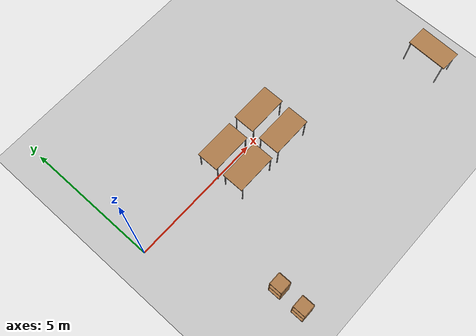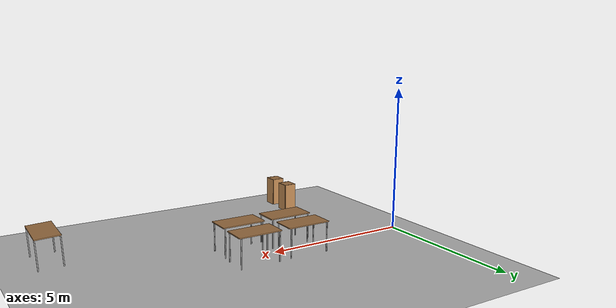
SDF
<sdf version="1.6">
 <world name="default">
  <model name="ground_plane">
   <static>1</static>
   <link name="link">
    <collision name="collision">
     <geometry><plane><normal>0 0 1</normal><size>100 100</size></plane></geometry>
     <surface><friction><ode><mu>100</mu><mu2>50</mu2></ode></friction></surface>
    </collision>
    <visual name="visual">
     <cast_shadows>0</cast_shadows>
     <geometry><plane><normal>0 0 1</normal><size>100 100</size></plane></geometry>
     <material>
      <script><uri>file://media/materials/scripts/gazebo.material</uri><name>Gazebo/Grey</name></script>
     </material>
    </visual>
   </link>
  </model>
  <model name="table_6">
   <static>1</static>
   <link name="link">
    <collision name="surface">
     <pose>0 0 1 0 -0 0</pose>
     <geometry><box><size>1.5 0.8 0.03</size></box></geometry>
     <surface><friction><ode><mu>0.6</mu><mu2>0.6</mu2></ode></friction></surface>
    </collision>
    <visual name="visual1">
     <pose>0 0 1 0 -0 0</pose>
     <geometry><box><size>1.5 0.8 0.03</size></box></geometry>
     <material>
      <script><uri>file://media/materials/scripts/gazebo.material</uri><name>Gazebo/Wood</name></script>
     </material>
    </visual>
    <collision name="front_left_leg">
     <pose>0.68 0.38 0.5 0 -0 0</pose>
     <geometry><cylinder><radius>0.02</radius><length>1</length></cylinder></geometry>
    </collision>
    <visual name="front_left_leg">
     <pose>0.68 0.38 0.5 0 -0 0</pose>
     <geometry><cylinder><radius>0.02</radius><length>1</length></cylinder></geometry>
     <material>
      <script><uri>file://media/materials/scripts/gazebo.material</uri><name>Gazebo/Grey</name></script>
     </material>
    </visual>
    <collision name="front_right_leg">
     <pose>0.68 -0.38 0.5 0 -0 0</pose>
     <geometry><cylinder><radius>0.02</radius><length>1</length></cylinder></geometry>
    </collision>
    <visual name="front_right_leg">
     <pose>0.68 -0.38 0.5 0 -0 0</pose>
     <geometry><cylinder><radius>0.02</radius><length>1</length></cylinder></geometry>
     <material>
      <script><uri>file://media/materials/scripts/gazebo.material</uri><name>Gazebo/Grey</name></script>
     </material>
    </visual>
    <collision name="back_right_leg">
     <pose>-0.68 -0.38 0.5 0 -0 0</pose>
     <geometry><cylinder><radius>0.02</radius><length>1</length></cylinder></geometry>
    </collision>
    <visual name="back_right_leg">
     <pose>-0.68 -0.38 0.5 0 -0 0</pose>
     <geometry><cylinder><radius>0.02</radius><length>1</length></cylinder></geometry>
     <material>
      <script><uri>file://media/materials/scripts/gazebo.material</uri><name>Gazebo/Grey</name></script>
     </material>
    </visual>
    <collision name="back_left_leg">
     <pose>-0.68 0.38 0.5 0 -0 0</pose>
     <geometry><cylinder><radius>0.02</radius><length>1</length></cylinder></geometry>
    </collision>
    <visual name="back_left_leg">
     <pose>-0.68 0.38 0.5 0 -0 0</pose>
     <geometry><cylinder><radius>0.02</radius><length>1</length></cylinder></geometry>
     <material>
      <script><uri>file://media/materials/scripts/gazebo.material</uri><name>Gazebo/Grey</name></script>
     </material>
    </visual>
   </link>
   <pose>4.16096 0.344612 0 0 -0 0</pose>
  </model>
  <model name="table_7">
   <static>1</static>
   <link name="link">
    <collision name="surface">
     <pose>0 0 1 0 -0 0</pose>
     <geometry><box><size>1.5 0.8 0.03</size></box></geometry>
     <surface><friction><ode><mu>0.6</mu><mu2>0.6</mu2></ode></friction></surface>
    </collision>
    <visual name="visual1">
     <pose>0 0 1 0 -0 0</pose>
     <geometry><box><size>1.5 0.8 0.03</size></box></geometry>
     <material>
      <script><uri>file://media/materials/scripts/gazebo.material</uri><name>Gazebo/Wood</name></script>
     </material>
    </visual>
    <collision name="front_left_leg">
     <pose>0.68 0.38 0.5 0 -0 0</pose>
     <geometry><cylinder><radius>0.02</radius><length>1</length></cylinder></geometry>
    </collision>
    <visual name="front_left_leg">
     <pose>0.68 0.38 0.5 0 -0 0</pose>
     <geometry><cylinder><radius>0.02</radius><length>1</length></cylinder></geometry>
     <material>
      <script><uri>file://media/materials/scripts/gazebo.material</uri><name>Gazebo/Grey</name></script>
     </material>
    </visual>
    <collision name="front_right_leg">
     <pose>0.68 -0.38 0.5 0 -0 0</pose>
     <geometry><cylinder><radius>0.02</radius><length>1</length></cylinder></geometry>
    </collision>
    <visual name="front_right_leg">
     <pose>0.68 -0.38 0.5 0 -0 0</pose>
     <geometry><cylinder><radius>0.02</radius><length>1</length></cylinder></geometry>
     <material>
      <script><uri>file://media/materials/scripts/gazebo.material</uri><name>Gazebo/Grey</name></script>
     </material>
    </visual>
    <collision name="back_right_leg">
     <pose>-0.68 -0.38 0.5 0 -0 0</pose>
     <geometry><cylinder><radius>0.02</radius><length>1</length></cylinder></geometry>
    </collision>
    <visual name="back_right_leg">
     <pose>-0.68 -0.38 0.5 0 -0 0</pose>
     <geometry><cylinder><radius>0.02</radius><length>1</length></cylinder></geometry>
     <material>
      <script><uri>file://media/materials/scripts/gazebo.material</uri><name>Gazebo/Grey</name></script>
     </material>
    </visual>
    <collision name="back_left_leg">
     <pose>-0.68 0.38 0.5 0 -0 0</pose>
     <geometry><cylinder><radius>0.02</radius><length>1</length></cylinder></geometry>
    </collision>
    <visual name="back_left_leg">
     <pose>-0.68 0.38 0.5 0 -0 0</pose>
     <geometry><cylinder><radius>0.02</radius><length>1</length></cylinder></geometry>
     <material>
      <script><uri>file://media/materials/scripts/gazebo.material</uri><name>Gazebo/Grey</name></script>
     </material>
    </visual>
   </link>
   <pose>5.95054 0.365611 0 0 -0 0</pose>
  </model>
  <model name="table_8">
   <static>1</static>
   <link name="link">
    <collision name="surface">
     <pose>0 0 1 0 -0 0</pose>
     <geometry><box><size>1.5 0.8 0.03</size></box></geometry>
     <surface><friction><ode><mu>0.6</mu><mu2>0.6</mu2></ode></friction></surface>
    </collision>
    <visual name="visual1">
     <pose>0 0 1 0 -0 0</pose>
     <geometry><box><size>1.5 0.8 0.03</size></box></geometry>
     <material>
      <script><uri>file://media/materials/scripts/gazebo.material</uri><name>Gazebo/Wood</name></script>
     </material>
    </visual>
    <collision name="front_left_leg">
     <pose>0.68 0.38 0.5 0 -0 0</pose>
     <geometry><cylinder><radius>0.02</radius><length>1</length></cylinder></geometry>
    </collision>
    <visual name="front_left_leg">
     <pose>0.68 0.38 0.5 0 -0 0</pose>
     <geometry><cylinder><radius>0.02</radius><length>1</length></cylinder></geometry>
     <material>
      <script><uri>file://media/materials/scripts/gazebo.material</uri><name>Gazebo/Grey</name></script>
     </material>
    </visual>
    <collision name="front_right_leg">
     <pose>0.68 -0.38 0.5 0 -0 0</pose>
     <geometry><cylinder><radius>0.02</radius><length>1</length></cylinder></geometry>
    </collision>
    <visual name="front_right_leg">
     <pose>0.68 -0.38 0.5 0 -0 0</pose>
     <geometry><cylinder><radius>0.02</radius><length>1</length></cylinder></geometry>
     <material>
      <script><uri>file://media/materials/scripts/gazebo.material</uri><name>Gazebo/Grey</name></script>
     </material>
    </visual>
    <collision name="back_right_leg">
     <pose>-0.68 -0.38 0.5 0 -0 0</pose>
     <geometry><cylinder><radius>0.02</radius><length>1</length></cylinder></geometry>
    </collision>
    <visual name="back_right_leg">
     <pose>-0.68 -0.38 0.5 0 -0 0</pose>
     <geometry><cylinder><radius>0.02</radius><length>1</length></cylinder></geometry>
     <material>
      <script><uri>file://media/materials/scripts/gazebo.material</uri><name>Gazebo/Grey</name></script>
     </material>
    </visual>
    <collision name="back_left_leg">
     <pose>-0.68 0.38 0.5 0 -0 0</pose>
     <geometry><cylinder><radius>0.02</radius><length>1</length></cylinder></geometry>
    </collision>
    <visual name="back_left_leg">
     <pose>-0.68 0.38 0.5 0 -0 0</pose>
     <geometry><cylinder><radius>0.02</radius><length>1</length></cylinder></geometry>
     <material>
      <script><uri>file://media/materials/scripts/gazebo.material</uri><name>Gazebo/Grey</name></script>
     </material>
    </visual>
   </link>
   <pose>4.17492 -0.740723 0 0 -0 0</pose>
  </model>
  <model name="table_9">
   <static>1</static>
   <link name="link">
    <collision name="surface">
     <pose>0 0 1 0 -0 0</pose>
     <geometry><box><size>1.5 0.8 0.03</size></box></geometry>
     <surface><friction><ode><mu>0.6</mu><mu2>0.6</mu2></ode></friction></surface>
    </collision>
    <visual name="visual1">
     <pose>0 0 1 0 -0 0</pose>
     <geometry><box><size>1.5 0.8 0.03</size></box></geometry>
     <material>
      <script><uri>file://media/materials/scripts/gazebo.material</uri><name>Gazebo/Wood</name></script>
     </material>
    </visual>
    <collision name="front_left_leg">
     <pose>0.68 0.38 0.5 0 -0 0</pose>
     <geometry><cylinder><radius>0.02</radius><length>1</length></cylinder></geometry>
    </collision>
    <visual name="front_left_leg">
     <pose>0.68 0.38 0.5 0 -0 0</pose>
     <geometry><cylinder><radius>0.02</radius><length>1</length></cylinder></geometry>
     <material>
      <script><uri>file://media/materials/scripts/gazebo.material</uri><name>Gazebo/Grey</name></script>
     </material>
    </visual>
    <collision name="front_right_leg">
     <pose>0.68 -0.38 0.5 0 -0 0</pose>
     <geometry><cylinder><radius>0.02</radius><length>1</length></cylinder></geometry>
    </collision>
    <visual name="front_right_leg">
     <pose>0.68 -0.38 0.5 0 -0 0</pose>
     <geometry><cylinder><radius>0.02</radius><length>1</length></cylinder></geometry>
     <material>
      <script><uri>file://media/materials/scripts/gazebo.material</uri><name>Gazebo/Grey</name></script>
     </material>
    </visual>
    <collision name="back_right_leg">
     <pose>-0.68 -0.38 0.5 0 -0 0</pose>
     <geometry><cylinder><radius>0.02</radius><length>1</length></cylinder></geometry>
    </collision>
    <visual name="back_right_leg">
     <pose>-0.68 -0.38 0.5 0 -0 0</pose>
     <geometry><cylinder><radius>0.02</radius><length>1</length></cylinder></geometry>
     <material>
      <script><uri>file://media/materials/scripts/gazebo.material</uri><name>Gazebo/Grey</name></script>
     </material>
    </visual>
    <collision name="back_left_leg">
     <pose>-0.68 0.38 0.5 0 -0 0</pose>
     <geometry><cylinder><radius>0.02</radius><length>1</length></cylinder></geometry>
    </collision>
    <visual name="back_left_leg">
     <pose>-0.68 0.38 0.5 0 -0 0</pose>
     <geometry><cylinder><radius>0.02</radius><length>1</length></cylinder></geometry>
     <material>
      <script><uri>file://media/materials/scripts/gazebo.material</uri><name>Gazebo/Grey</name></script>
     </material>
    </visual>
   </link>
   <pose>5.92417 -0.741013 0 0 -0 0</pose>
  </model>
  <model name="table_10">
   <static>1</static>
   <link name="link">
    <collision name="surface">
     <pose>0 0 1 0 -0 0</pose>
     <geometry><box><size>1.5 0.8 0.03</size></box></geometry>
     <surface><friction><ode><mu>0.6</mu><mu2>0.6</mu2></ode></friction></surface>
    </collision>
    <visual name="visual1">
     <pose>0 0 1 0 -0 0</pose>
     <geometry><box><size>1.5 0.8 0.03</size></box></geometry>
     <material>
      <script><uri>file://media/materials/scripts/gazebo.material</uri><name>Gazebo/Wood</name></script>
     </material>
    </visual>
    <collision name="front_left_leg">
     <pose>0.68 0.38 0.5 0 -0 0</pose>
     <geometry><cylinder><radius>0.02</radius><length>1</length></cylinder></geometry>
    </collision>
    <visual name="front_left_leg">
     <pose>0.68 0.38 0.5 0 -0 0</pose>
     <geometry><cylinder><radius>0.02</radius><length>1</length></cylinder></geometry>
     <material>
      <script><uri>file://media/materials/scripts/gazebo.material</uri><name>Gazebo/Grey</name></script>
     </material>
    </visual>
    <collision name="front_right_leg">
     <pose>0.68 -0.38 0.5 0 -0 0</pose>
     <geometry><cylinder><radius>0.02</radius><length>1</length></cylinder></geometry>
    </collision>
    <visual name="front_right_leg">
     <pose>0.68 -0.38 0.5 0 -0 0</pose>
     <geometry><cylinder><radius>0.02</radius><length>1</length></cylinder></geometry>
     <material>
      <script><uri>file://media/materials/scripts/gazebo.material</uri><name>Gazebo/Grey</name></script>
     </material>
    </visual>
    <collision name="back_right_leg">
     <pose>-0.68 -0.38 0.5 0 -0 0</pose>
     <geometry><cylinder><radius>0.02</radius><length>1</length></cylinder></geometry>
    </collision>
    <visual name="back_right_leg">
     <pose>-0.68 -0.38 0.5 0 -0 0</pose>
     <geometry><cylinder><radius>0.02</radius><length>1</length></cylinder></geometry>
     <material>
      <script><uri>file://media/materials/scripts/gazebo.material</uri><name>Gazebo/Grey</name></script>
     </material>
    </visual>
    <collision name="back_left_leg">
     <pose>-0.68 0.38 0.5 0 -0 0</pose>
     <geometry><cylinder><radius>0.02</radius><length>1</length></cylinder></geometry>
    </collision>
    <visual name="back_left_leg">
     <pose>-0.68 0.38 0.5 0 -0 0</pose>
     <geometry><cylinder><radius>0.02</radius><length>1</length></cylinder></geometry>
     <material>
      <script><uri>file://media/materials/scripts/gazebo.material</uri><name>Gazebo/Grey</name></script>
     </material>
    </visual>
   </link>
   <pose>11.5846 -2.60935 0.137281 -0.052354 -0.00168 -1.60285</pose>
  </model>
  <model name="cabinet">
   <static>1</static>
   <link name="cabinet_bottom_plate">
    <inertial>
     <pose>0 0 -1 0 -0 0</pose>
     <inertia><ixx>2.05</ixx><ixy>0</ixy><ixz>0</ixz><iyy>2.05</iyy><iyz>0</iyz><izz>2.05</izz></inertia>
     <mass>25</mass>
    </inertial>
    <collision name="cabinet_bottom_plate_geom">
     <pose>0 0 0.01 0 -0 0</pose>
     <geometry><box><size>0.45 0.45 0.02</size></box></geometry>
    </collision>
    <visual name="cabinet_bottom_plate_geom_visual">
     <pose>0 0 0.01 0 -0 0</pose>
     <geometry><box><size>0.45 0.45 0.02</size></box></geometry>
     <material>
      <script><uri>file://media/materials/scripts/gazebo.material</uri><name>Gazebo/Wood</name></script>
     </material>
    </visual>
    <collision name="cabinet_bottom_plate_geom_cabinet_back_plate">
     <pose>0.235 0 0.51 0 -0 0</pose>
     <geometry><box><size>0.02 0.45 1.02</size></box></geometry>
    </collision>
    <visual name="cabinet_bottom_plate_geom_cabinet_back_plate_visual">
     <pose>0.235 0 0.51 0 -0 0</pose>
     <geometry><box><size>0.02 0.45 1.02</size></box></geometry>
     <material>
      <script><uri>file://media/materials/scripts/gazebo.material</uri><name>Gazebo/Wood</name></script>
     </material>
    </visual>
    <collision name="cabinet_bottom_plate_geom_cabinet_left_plate">
     <pose>0 0.235 0.51 0 -0 0</pose>
     <geometry><box><size>0.45 0.02 1.02</size></box></geometry>
    </collision>
    <visual name="cabinet_bottom_plate_geom_cabinet_left_plate_visual">
     <pose>0 0.235 0.51 0 -0 0</pose>
     <geometry><box><size>0.45 0.02 1.02</size></box></geometry>
     <material>
      <script><uri>file://media/materials/scripts/gazebo.material</uri><name>Gazebo/Wood</name></script>
     </material>
    </visual>
    <collision name="cabinet_bottom_plate_geom_cabinet_middle_plate">
     <pose>0 0 0.51 0 -0 0</pose>
     <geometry><box><size>0.45 0.45 0.02</size></box></geometry>
    </collision>
    <visual name="cabinet_bottom_plate_geom_cabinet_middle_plate_visual">
     <pose>0 0 0.51 0 -0 0</pose>
     <geometry><box><size>0.45 0.45 0.02</size></box></geometry>
     <material>
      <script><uri>file://media/materials/scripts/gazebo.material</uri><name>Gazebo/Wood</name></script>
     </material>
    </visual>
    <collision name="cabinet_bottom_plate_geom_cabinet_right_plate">
     <pose>0 -0.235 0.51 0 -0 0</pose>
     <geometry><box><size>0.45 0.02 1.02</size></box></geometry>
    </collision>
    <visual name="cabinet_bottom_plate_geom_cabinet_right_plate_visual">
     <pose>0 -0.235 0.51 0 -0 0</pose>
     <geometry><box><size>0.45 0.02 1.02</size></box></geometry>
     <material>
      <script><uri>file://media/materials/scripts/gazebo.material</uri><name>Gazebo/Wood</name></script>
     </material>
    </visual>
    <collision name="cabinet_bottom_plate_geom_cabinet_top_plate">
     <pose>0 0 1.01 0 -0 0</pose>
     <geometry><box><size>0.45 0.45 0.02</size></box></geometry>
    </collision>
    <visual name="cabinet_bottom_plate_geom_cabinet_top_plate_visual">
     <pose>0 0 1.01 0 -0 0</pose>
     <geometry><box><size>0.45 0.45 0.02</size></box></geometry>
     <material>
      <script><uri>file://media/materials/scripts/gazebo.material</uri><name>Gazebo/Wood</name></script>
     </material>
    </visual>
   </link>
   <pose>1.95925 -4.96883 0.015693 0 -0 0</pose>
  </model>
  <model name="cabinet_0">
   <static>1</static>
   <link name="cabinet_bottom_plate">
    <inertial>
     <pose>0 0 -1 0 -0 0</pose>
     <inertia><ixx>2.05</ixx><ixy>0</ixy><ixz>0</ixz><iyy>2.05</iyy><iyz>0</iyz><izz>2.05</izz></inertia>
     <mass>25</mass>
    </inertial>
    <collision name="cabinet_bottom_plate_geom">
     <pose>0 0 0.01 0 -0 0</pose>
     <geometry><box><size>0.45 0.45 0.02</size></box></geometry>
    </collision>
    <visual name="cabinet_bottom_plate_geom_visual">
     <pose>0 0 0.01 0 -0 0</pose>
     <geometry><box><size>0.45 0.45 0.02</size></box></geometry>
     <material>
      <script><uri>file://media/materials/scripts/gazebo.material</uri><name>Gazebo/Wood</name></script>
     </material>
    </visual>
    <collision name="cabinet_bottom_plate_geom_cabinet_back_plate">
     <pose>0.235 0 0.51 0 -0 0</pose>
     <geometry><box><size>0.02 0.45 1.02</size></box></geometry>
    </collision>
    <visual name="cabinet_bottom_plate_geom_cabinet_back_plate_visual">
     <pose>0.235 0 0.51 0 -0 0</pose>
     <geometry><box><size>0.02 0.45 1.02</size></box></geometry>
     <material>
      <script><uri>file://media/materials/scripts/gazebo.material</uri><name>Gazebo/Wood</name></script>
     </material>
    </visual>
    <collision name="cabinet_bottom_plate_geom_cabinet_left_plate">
     <pose>0 0.235 0.51 0 -0 0</pose>
     <geometry><box><size>0.45 0.02 1.02</size></box></geometry>
    </collision>
    <visual name="cabinet_bottom_plate_geom_cabinet_left_plate_visual">
     <pose>0 0.235 0.51 0 -0 0</pose>
     <geometry><box><size>0.45 0.02 1.02</size></box></geometry>
     <material>
      <script><uri>file://media/materials/scripts/gazebo.material</uri><name>Gazebo/Wood</name></script>
     </material>
    </visual>
    <collision name="cabinet_bottom_plate_geom_cabinet_middle_plate">
     <pose>0 0 0.51 0 -0 0</pose>
     <geometry><box><size>0.45 0.45 0.02</size></box></geometry>
    </collision>
    <visual name="cabinet_bottom_plate_geom_cabinet_middle_plate_visual">
     <pose>0 0 0.51 0 -0 0</pose>
     <geometry><box><size>0.45 0.45 0.02</size></box></geometry>
     <material>
      <script><uri>file://media/materials/scripts/gazebo.material</uri><name>Gazebo/Wood</name></script>
     </material>
    </visual>
    <collision name="cabinet_bottom_plate_geom_cabinet_right_plate">
     <pose>0 -0.235 0.51 0 -0 0</pose>
     <geometry><box><size>0.45 0.02 1.02</size></box></geometry>
    </collision>
    <visual name="cabinet_bottom_plate_geom_cabinet_right_plate_visual">
     <pose>0 -0.235 0.51 0 -0 0</pose>
     <geometry><box><size>0.45 0.02 1.02</size></box></geometry>
     <material>
      <script><uri>file://media/materials/scripts/gazebo.material</uri><name>Gazebo/Wood</name></script>
     </material>
    </visual>
    <collision name="cabinet_bottom_plate_geom_cabinet_top_plate">
     <pose>0 0 1.01 0 -0 0</pose>
     <geometry><box><size>0.45 0.45 0.02</size></box></geometry>
    </collision>
    <visual name="cabinet_bottom_plate_geom_cabinet_top_plate_visual">
     <pose>0 0 1.01 0 -0 0</pose>
     <geometry><box><size>0.45 0.45 0.02</size></box></geometry>
     <material>
      <script><uri>file://media/materials/scripts/gazebo.material</uri><name>Gazebo/Wood</name></script>
     </material>
    </visual>
   </link>
   <pose>2.00953 -3.99105 0.00919 0 -0 0</pose>
  </model>
 </world>
</sdf>
